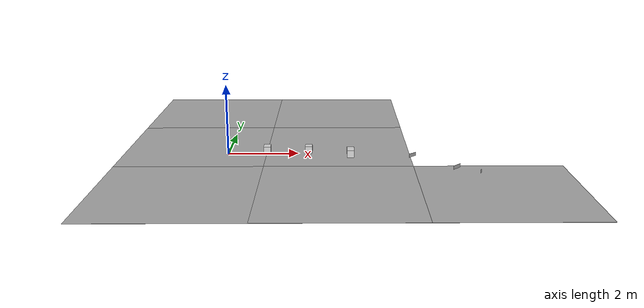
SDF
<sdf version="1.6">
 <world name="default">
  <model name="Tile/0-0">
   <static>1</static>
   <link name="link">
    <collision name="collision">
     <geometry><plane><normal>0 0 1</normal><size>4.096 4.096</size></plane></geometry>
     <surface><friction><ode><mu>100</mu><mu2>50</mu2></ode></friction></surface>
    </collision>
    <visual name="visual">
     <cast_shadows>0</cast_shadows>
     <geometry><plane><normal>0 0 1</normal><size>4.096 4.096</size></plane></geometry>
     <material>
      <script>
       <uri>file://materials/scripts</uri>
       <uri>file://materials/textures</uri>
       <name>Tile/5eab350b8220ac9944dbdfa4ac3288c7c17e24c3bf5df0dfcf6173d64dae00a1</name>
      </script>
     </material>
    </visual>
   </link>
   <pose>-0.952 -3.2519838681101287 0 0 -0 0</pose>
  </model>
  <model name="Tile/0-1">
   <static>1</static>
   <link name="link">
    <collision name="collision">
     <geometry><plane><normal>0 0 1</normal><size>4.096 4.096</size></plane></geometry>
     <surface><friction><ode><mu>100</mu><mu2>50</mu2></ode></friction></surface>
    </collision>
    <visual name="visual">
     <cast_shadows>0</cast_shadows>
     <geometry><plane><normal>0 0 1</normal><size>4.096 4.096</size></plane></geometry>
     <material>
      <script>
       <uri>file://materials/scripts</uri>
       <uri>file://materials/textures</uri>
       <name>Tile/8d6822687a14f2a9c6e82bef3759d0645b9aca651441e53cddc5a81c7ee2f084</name>
      </script>
     </material>
    </visual>
   </link>
   <pose>-0.952 0.8440161318898713 0 0 -0 0</pose>
  </model>
  <model name="Tile/0-2">
   <static>1</static>
   <link name="link">
    <collision name="collision">
     <geometry><plane><normal>0 0 1</normal><size>4.096 4.096</size></plane></geometry>
     <surface><friction><ode><mu>100</mu><mu2>50</mu2></ode></friction></surface>
    </collision>
    <visual name="visual">
     <cast_shadows>0</cast_shadows>
     <geometry><plane><normal>0 0 1</normal><size>4.096 4.096</size></plane></geometry>
     <material>
      <script>
       <uri>file://materials/scripts</uri>
       <uri>file://materials/textures</uri>
       <name>Tile/5eab350b8220ac9944dbdfa4ac3288c7c17e24c3bf5df0dfcf6173d64dae00a1</name>
      </script>
     </material>
    </visual>
   </link>
   <pose>-0.952 4.940016131889871 0 0 -0 0</pose>
  </model>
  <model name="Tile/1-0">
   <static>1</static>
   <link name="link">
    <collision name="collision">
     <geometry><plane><normal>0 0 1</normal><size>4.096 4.096</size></plane></geometry>
     <surface><friction><ode><mu>100</mu><mu2>50</mu2></ode></friction></surface>
    </collision>
    <visual name="visual">
     <cast_shadows>0</cast_shadows>
     <geometry><plane><normal>0 0 1</normal><size>4.096 4.096</size></plane></geometry>
     <material>
      <script>
       <uri>file://materials/scripts</uri>
       <uri>file://materials/textures</uri>
       <name>Tile/5eab350b8220ac9944dbdfa4ac3288c7c17e24c3bf5df0dfcf6173d64dae00a1</name>
      </script>
     </material>
    </visual>
   </link>
   <pose>3.144 -3.2519838681101287 0 0 -0 0</pose>
  </model>
  <model name="Tile/1-1">
   <static>1</static>
   <link name="link">
    <collision name="collision">
     <geometry><plane><normal>0 0 1</normal><size>4.096 4.096</size></plane></geometry>
     <surface><friction><ode><mu>100</mu><mu2>50</mu2></ode></friction></surface>
    </collision>
    <visual name="visual">
     <cast_shadows>0</cast_shadows>
     <geometry><plane><normal>0 0 1</normal><size>4.096 4.096</size></plane></geometry>
     <material>
      <script>
       <uri>file://materials/scripts</uri>
       <uri>file://materials/textures</uri>
       <name>Tile/55fa0b5ecde4e20a9d4ca1a9bebc925380afe0e014907ae314c3357f753255dd</name>
      </script>
     </material>
    </visual>
   </link>
   <pose>3.144 0.8440161318898713 0 0 -0 0</pose>
  </model>
  <model name="Tile/1-2">
   <static>1</static>
   <link name="link">
    <collision name="collision">
     <geometry><plane><normal>0 0 1</normal><size>4.096 4.096</size></plane></geometry>
     <surface><friction><ode><mu>100</mu><mu2>50</mu2></ode></friction></surface>
    </collision>
    <visual name="visual">
     <cast_shadows>0</cast_shadows>
     <geometry><plane><normal>0 0 1</normal><size>4.096 4.096</size></plane></geometry>
     <material>
      <script>
       <uri>file://materials/scripts</uri>
       <uri>file://materials/textures</uri>
       <name>Tile/5eab350b8220ac9944dbdfa4ac3288c7c17e24c3bf5df0dfcf6173d64dae00a1</name>
      </script>
     </material>
    </visual>
   </link>
   <pose>3.144 4.940016131889871 0 0 -0 0</pose>
  </model>
  <model name="Tile/2-0">
   <static>1</static>
   <link name="link">
    <collision name="collision">
     <geometry><plane><normal>0 0 1</normal><size>4.096 4.096</size></plane></geometry>
     <surface><friction><ode><mu>100</mu><mu2>50</mu2></ode></friction></surface>
    </collision>
    <visual name="visual">
     <cast_shadows>0</cast_shadows>
     <geometry><plane><normal>0 0 1</normal><size>4.096 4.096</size></plane></geometry>
     <material>
      <script>
       <uri>file://materials/scripts</uri>
       <uri>file://materials/textures</uri>
       <name>Tile/0f8ed6262aa09a0f7c57de6aa403964d6a8d2030b8ee0fd4ec99775696e1f200</name>
      </script>
     </material>
    </visual>
   </link>
   <pose>7.24 -3.2519838681101287 0 0 -0 0</pose>
  </model>
  <model name="Obstacle/-5/0">
   <pose>1.1 0.15 0.1 0 0 -0.0</pose>
   <link name="link">
    <inertial>
     <mass>10</mass>
     <inertia>
      <ixx>0.166667</ixx>
      <ixy>0</ixy>
      <ixz>0</ixz>
      <iyy>0.166667</iyy>
      <iyz>0</iyz>
      <izz>0.166667</izz>
     </inertia>
    </inertial>
    <collision name="collision"><geometry><box><size>0.2 0.3 0.2</size></box></geometry></collision>
    <visual name="visual">
     <geometry><box><size>0.2 0.3 0.2</size></box></geometry>
     <material>
      <script><name>Gazebo/White</name><uri>file://media/materials/scripts/gazebo.material</uri></script>
     </material>
    </visual>
   </link>
  </model>
  <model name="Obstacle/-10/0">
   <pose>2.3000000000000003 0.15 0.1 0 0 -0.0</pose>
   <link name="link">
    <inertial>
     <mass>10</mass>
     <inertia>
      <ixx>0.166667</ixx>
      <ixy>0</ixy>
      <ixz>0</ixz>
      <iyy>0.166667</iyy>
      <iyz>0</iyz>
      <izz>0.166667</izz>
     </inertia>
    </inertial>
    <collision name="collision"><geometry><box><size>0.2 0.3 0.2</size></box></geometry></collision>
    <visual name="visual">
     <geometry><box><size>0.2 0.3 0.2</size></box></geometry>
     <material>
      <script><name>Gazebo/White</name><uri>file://media/materials/scripts/gazebo.material</uri></script>
     </material>
    </visual>
   </link>
  </model>
  <model name="Obstacle/-15/0">
   <pose>3.5000000000000004 -0.2 0.1 0 0 -0.0</pose>
   <link name="link">
    <inertial>
     <mass>10</mass>
     <inertia>
      <ixx>0.166667</ixx>
      <ixy>0</ixy>
      <ixz>0</ixz>
      <iyy>0.166667</iyy>
      <iyz>0</iyz>
      <izz>0.166667</izz>
     </inertia>
    </inertial>
    <collision name="collision"><geometry><box><size>0.2 0.4 0.2</size></box></geometry></collision>
    <visual name="visual">
     <geometry><box><size>0.2 0.4 0.2</size></box></geometry>
     <material>
      <script><name>Gazebo/White</name><uri>file://media/materials/scripts/gazebo.material</uri></script>
     </material>
    </visual>
   </link>
  </model>
  <model name="Sign/-22">
   <static>1</static>
   <link name="link">
    <visual name="visual">
     <cast_shadows>0</cast_shadows>
     <geometry><plane><normal>0 0 1</normal><size>0.3 0.1</size></plane></geometry>
     <material>
      <script>
       <uri>file://materials/scripts</uri>
       <uri>file://materials/textures</uri>
       <name>Sign/stvo-625-11</name>
      </script>
     </material>
    </visual>
   </link>
   <pose>5.204576297914499 -0.8024947698973675 0.2 1.5707963267948966 0 3.9269908169872414</pose>
  </model>
  <model name="Sign/-27">
   <static>1</static>
   <link name="link">
    <visual name="visual">
     <cast_shadows>0</cast_shadows>
     <geometry><plane><normal>0 0 1</normal><size>0.3 0.1</size></plane></geometry>
     <material>
      <script>
       <uri>file://materials/scripts</uri>
       <uri>file://materials/textures</uri>
       <name>Sign/stvo-625-11</name>
      </script>
     </material>
    </visual>
   </link>
   <pose>6.272307537506185 -1.8702260094890542 0.2 1.5707963267948966 0 3.9269908169872414</pose>
  </model>
  <model name="Sign/-32">
   <static>1</static>
   <link name="link">
    <visual name="visual">
     <cast_shadows>0</cast_shadows>
     <geometry><plane><normal>0 0 1</normal><size>0.1 0.1</size></plane></geometry>
     <material>
      <script>
       <uri>file://materials/scripts</uri>
       <uri>file://materials/textures</uri>
       <name>Sign/stvo-625-10</name>
      </script>
     </material>
    </visual>
   </link>
   <pose>6.835127223266705 -2.26431659611139 0.2 1.5707963267948966 0 4.276056667386108</pose>
  </model>
 </world>
</sdf>
